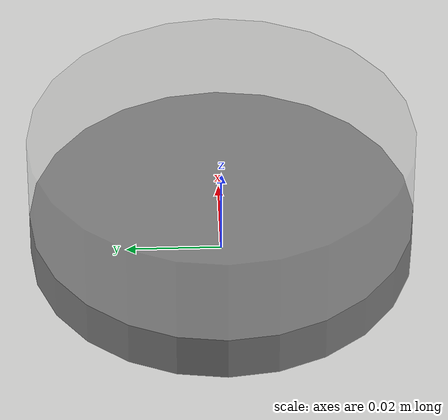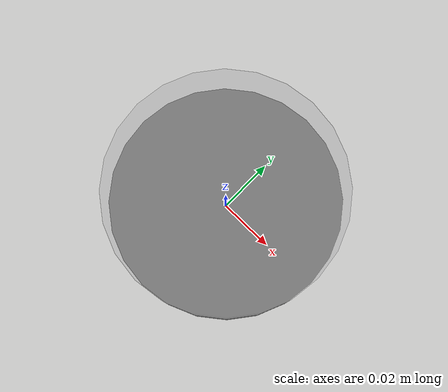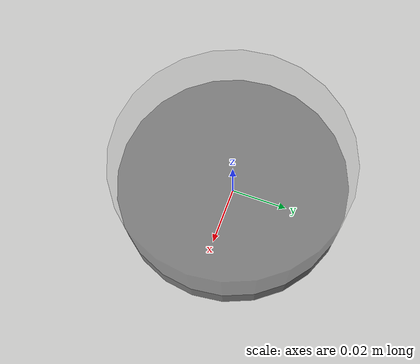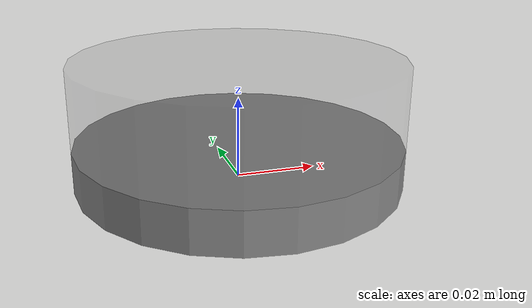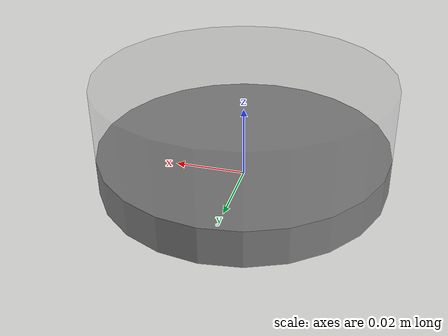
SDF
<?xml version='1.0'?>
<sdf version="1.4">
<model name="light_round">
  <pose>0 0 0.005 0 0 0</pose>

    <link name="base">
      <self_collide>true</self_collide>
      <pose>0 0 0 0 0 0</pose>
      <inertial>
        <mass>0.1</mass>
        <inertia>
          <ixx>0.0002</ixx>
          <ixy>0.0</ixy>
          <ixz>0.0</ixz>
          <iyy>0.0002</iyy>
          <iyz>0.0</iyz>
          <izz>0.0002</izz>
        </inertia>
      </inertial>

      <collision name="collision">
        <geometry>
          <cylinder>
            <radius>0.04</radius>
            <length>0.01</length>
          </cylinder>
        </geometry>
      </collision>

      <visual name="visual">
        <geometry>
          <cylinder>
            <radius>0.04</radius>
            <length>0.01</length>
          </cylinder>
        </geometry>
        <material>
          <diffuse>0.5 0.5 0.5 1</diffuse>
          <ambient>0.3 0.3 0.3 1</ambient>
          <specular>0.8 0.8 0.8 1</specular>
          <emissive>0 0 0 0</emissive>
        </material>
      </visual>
    </link>

    <link name="lamp">
      <self_collide>true</self_collide>
      <pose>0 0 0.015 0 0 0</pose>
      <inertial>
        <mass>0.1</mass>
        <inertia>
          <ixx>0.0002</ixx>
          <ixy>0.0</ixy>
          <ixz>0.0</ixz>
          <iyy>0.0002</iyy>
          <iyz>0.0</iyz>
          <izz>0.0002</izz>
        </inertia>
      </inertial>

      <collision name="collision">
        <geometry>
          <cylinder>
            <radius>0.04</radius>
            <length>0.02</length>
          </cylinder>
        </geometry>
      </collision>

      <visual name="visual">
        <geometry>
          <cylinder>
            <radius>0.04</radius>
            <length>0.02</length>
          </cylinder>
        </geometry>
        <material>
          <diffuse>0.5 0.5 0.5 0.1</diffuse>
          <ambient>0.3 0.3 0.3 0.1</ambient>
          <specular>0.7 0.7 0.7 0.1</specular>
          <emissive>0 0 0 1</emissive>
        </material>
        <plugin name="color_plugin" filename="libDREAM_change_color.so"/>
      </visual>
    </link>

    <joint name="fixe" type="revolute">
        <pose>0 0 0 0 0 0</pose>
        <child>lamp</child>
        <parent>base</parent>
        <axis>
            <xyz>1 0 0</xyz>
            <limit>
                <lower>0</lower>
                <upper>0</upper>
            </limit>
        </axis>
    </joint>

  </model>
</sdf>
